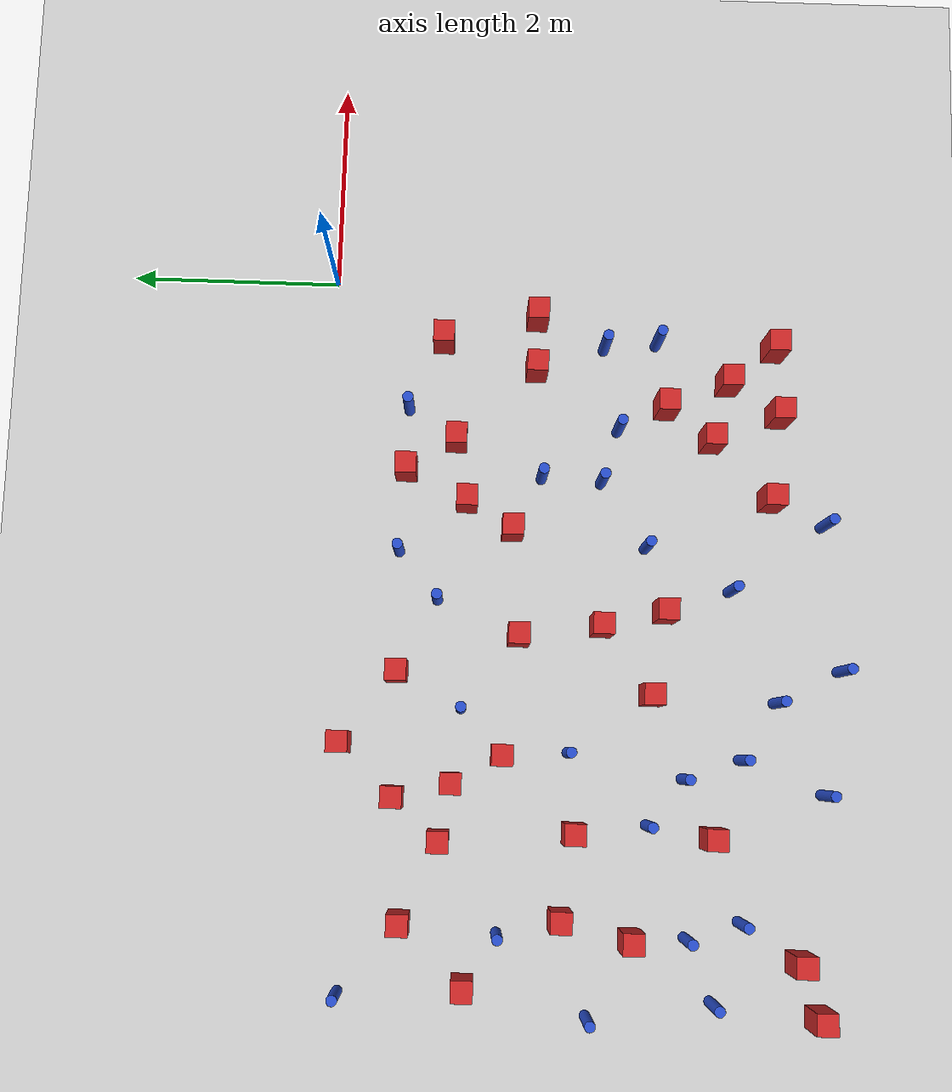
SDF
<sdf version="1.6">
 <world name="default">
  <model name="ground_plane">
   <static>1</static>
   <link name="link">
    <collision name="collision">
     <geometry><plane><normal>0 0 1</normal><size>100 100</size></plane></geometry>
     <surface><friction><ode><mu>100</mu><mu2>50</mu2></ode></friction></surface>
    </collision>
    <visual name="visual">
     <cast_shadows>0</cast_shadows>
     <geometry><plane><normal>0 0 1</normal><size>100 100</size></plane></geometry>
     <material>
      <ambient>1.0 1.0 1.0 1.0</ambient>
      <diffuse>0.8 0.8 0.8 1.0</diffuse>
      <specular>0.01 0.01 0.01 1.000000</specular>
     </material>
    </visual>
   </link>
  </model>
  <model name="square_post_obstacle5">
   <static>true</static>
   <pose>-2.03807652556 -4.21713258251 1.91545236811e-07 -7.35059704564e-06 1.12565212e-07 2.39332434364e-05</pose>
   <link name="link">
    <pose>0 0 0.25 0 -0 0</pose>
    <inertial>
     <mass>100</mass>
     <inertia>
      <ixx>0.166667</ixx>
      <ixy>0</ixy>
      <ixz>0</ixz>
      <iyy>0.166667</iyy>
      <iyz>0</iyz>
      <izz>0.166667</izz>
     </inertia>
    </inertial>
    <collision name="collision"><geometry><box><size>.2 .2 .5</size></box></geometry></collision>
    <visual name="visual">
     <geometry><box><size>.2 .2 .5</size></box></geometry>
     <material>
      <script><name>Gazebo/Red</name><uri>file://media/materials/scripts/gazebo.material</uri></script>
     </material>
    </visual>
   </link>
  </model>
  <model name="square_post_obstacle9">
   <static>true</static>
   <pose>-1.20917109149 -4.29312356543 1.91545236811e-07 -7.35059704564e-06 1.12565212e-07 2.39332434364e-05</pose>
   <link name="link">
    <pose>0 0 0.25 0 -0 0</pose>
    <inertial>
     <mass>100</mass>
     <inertia>
      <ixx>0.166667</ixx>
      <ixy>0</ixy>
      <ixz>0</ixz>
      <iyy>0.166667</iyy>
      <iyz>0</iyz>
      <izz>0.166667</izz>
     </inertia>
    </inertial>
    <collision name="collision"><geometry><box><size>.2 .2 .5</size></box></geometry></collision>
    <visual name="visual">
     <geometry><box><size>.2 .2 .5</size></box></geometry>
     <material>
      <script><name>Gazebo/Red</name><uri>file://media/materials/scripts/gazebo.material</uri></script>
     </material>
    </visual>
   </link>
  </model>
  <model name="pole_obstacle9">
   <static>true</static>
   <pose>-6.6953918444 -0.285240140767 7.38925637345e-09 -8.47170692801e-08 1.24976765176e-08 -1.74513093013e-07</pose>
   <link name="link">
    <pose>0 0 0.3 0 -0 0</pose>
    <inertial>
     <mass>1</mass>
     <inertia><ixx>0.145833</ixx><ixy>0</ixy><ixz>0</ixz><iyy>0.145833</iyy><iyz>0</iyz><izz>0.125</izz></inertia>
    </inertial>
    <collision name="collision">
     <geometry><cylinder><radius>0.05</radius><length>.6</length></cylinder></geometry>
    </collision>
    <visual name="visual">
     <geometry><cylinder><radius>0.05</radius><length>.6</length></cylinder></geometry>
     <material>
      <script><name>Gazebo/Blue</name><uri>file://media/materials/scripts/gazebo.material</uri></script>
     </material>
    </visual>
   </link>
  </model>
  <model name="pole_obstacle10">
   <static>true</static>
   <pose>-2.53055968332 -3.03960977382 7.38925637345e-09 -8.47170692798e-08 1.24976764939e-08 -1.74513093025e-07</pose>
   <link name="link">
    <pose>0 0 0.3 0 -0 0</pose>
    <inertial>
     <mass>1</mass>
     <inertia><ixx>0.145833</ixx><ixy>0</ixy><ixz>0</ixz><iyy>0.145833</iyy><iyz>0</iyz><izz>0.125</izz></inertia>
    </inertial>
    <collision name="collision">
     <geometry><cylinder><radius>0.05</radius><length>.6</length></cylinder></geometry>
    </collision>
    <visual name="visual">
     <geometry><cylinder><radius>0.05</radius><length>.6</length></cylinder></geometry>
     <material>
      <script><name>Gazebo/Blue</name><uri>file://media/materials/scripts/gazebo.material</uri></script>
     </material>
    </visual>
   </link>
  </model>
  <model name="pole_obstacle13">
   <static>true</static>
   <pose>-1.39544244567 -2.75928304356 7.38925637345e-09 -8.47170692799e-08 1.24976765053e-08 -1.74513093017e-07</pose>
   <link name="link">
    <pose>0 0 0.3 0 -0 0</pose>
    <inertial>
     <mass>1</mass>
     <inertia><ixx>0.145833</ixx><ixy>0</ixy><ixz>0</ixz><iyy>0.145833</iyy><iyz>0</iyz><izz>0.125</izz></inertia>
    </inertial>
    <collision name="collision">
     <geometry><cylinder><radius>0.05</radius><length>.6</length></cylinder></geometry>
    </collision>
    <visual name="visual">
     <geometry><cylinder><radius>0.05</radius><length>.6</length></cylinder></geometry>
     <material>
      <script><name>Gazebo/Blue</name><uri>file://media/materials/scripts/gazebo.material</uri></script>
     </material>
    </visual>
   </link>
  </model>
  <model name="pole_obstacle15">
   <static>true</static>
   <pose>-2.63163203845 -0.702044181313 7.38925637345e-09 -8.471706928e-08 1.24976765177e-08 -1.74513093012e-07</pose>
   <link name="link">
    <pose>0 0 0.3 0 -0 0</pose>
    <inertial>
     <mass>1</mass>
     <inertia><ixx>0.145833</ixx><ixy>0</ixy><ixz>0</ixz><iyy>0.145833</iyy><iyz>0</iyz><izz>0.125</izz></inertia>
    </inertial>
    <collision name="collision">
     <geometry><cylinder><radius>0.05</radius><length>.6</length></cylinder></geometry>
    </collision>
    <visual name="visual">
     <geometry><cylinder><radius>0.05</radius><length>.6</length></cylinder></geometry>
     <material>
      <script><name>Gazebo/Blue</name><uri>file://media/materials/scripts/gazebo.material</uri></script>
     </material>
    </visual>
   </link>
  </model>
  <model name="square_post_obstacle24">
   <static>true</static>
   <pose>-6.77727518409 -4.65729277757 1.91545236811e-07 -7.35059704564e-06 1.12565212e-07 2.39332434364e-05</pose>
   <link name="link">
    <pose>0 0 0.25 0 -0 0</pose>
    <inertial>
     <mass>100</mass>
     <inertia>
      <ixx>0.166667</ixx>
      <ixy>0</ixy>
      <ixz>0</ixz>
      <iyy>0.166667</iyy>
      <iyz>0</iyz>
      <izz>0.166667</izz>
     </inertia>
    </inertial>
    <collision name="collision"><geometry><box><size>.2 .2 .5</size></box></geometry></collision>
    <visual name="visual">
     <geometry><box><size>.2 .2 .5</size></box></geometry>
     <material>
      <script><name>Gazebo/Red</name><uri>file://media/materials/scripts/gazebo.material</uri></script>
     </material>
    </visual>
   </link>
  </model>
  <model name="square_post_obstacle29">
   <static>true</static>
   <pose>-0.906012896503 -3.80635101784 1.91545236811e-07 -7.35059704564e-06 1.12565212e-07 2.39332434364e-05</pose>
   <link name="link">
    <pose>0 0 0.25 0 -0 0</pose>
    <inertial>
     <mass>100</mass>
     <inertia>
      <ixx>0.166667</ixx>
      <ixy>0</ixy>
      <ixz>0</ixz>
      <iyy>0.166667</iyy>
      <iyz>0</iyz>
      <izz>0.166667</izz>
     </inertia>
    </inertial>
    <collision name="collision"><geometry><box><size>.2 .2 .5</size></box></geometry></collision>
    <visual name="visual">
     <geometry><box><size>.2 .2 .5</size></box></geometry>
     <material>
      <script><name>Gazebo/Red</name><uri>file://media/materials/scripts/gazebo.material</uri></script>
     </material>
    </visual>
   </link>
  </model>
  <model name="square_post_obstacle30">
   <static>true</static>
   <pose>-3.92213376251 -3.10645271706 1.91545236811e-07 -7.35059704564e-06 1.12565212e-07 2.39332434364e-05</pose>
   <link name="link">
    <pose>0 0 0.25 0 -0 0</pose>
    <inertial>
     <mass>100</mass>
     <inertia>
      <ixx>0.166667</ixx>
      <ixy>0</ixy>
      <ixz>0</ixz>
      <iyy>0.166667</iyy>
      <iyz>0</iyz>
      <izz>0.166667</izz>
     </inertia>
    </inertial>
    <collision name="collision"><geometry><box><size>.2 .2 .5</size></box></geometry></collision>
    <visual name="visual">
     <geometry><box><size>.2 .2 .5</size></box></geometry>
     <material>
      <script><name>Gazebo/Red</name><uri>file://media/materials/scripts/gazebo.material</uri></script>
     </material>
    </visual>
   </link>
  </model>
  <model name="pole_obstacle23">
   <static>true</static>
   <pose>-0.526305245298 -3.11880144186 7.38925637345e-09 -8.47170692799e-08 1.24976765084e-08 -1.74513093016e-07</pose>
   <link name="link">
    <pose>0 0 0.3 0 -0 0</pose>
    <inertial>
     <mass>1</mass>
     <inertia><ixx>0.145833</ixx><ixy>0</ixy><ixz>0</ixz><iyy>0.145833</iyy><iyz>0</iyz><izz>0.125</izz></inertia>
    </inertial>
    <collision name="collision">
     <geometry><cylinder><radius>0.05</radius><length>.6</length></cylinder></geometry>
    </collision>
    <visual name="visual">
     <geometry><cylinder><radius>0.05</radius><length>.6</length></cylinder></geometry>
     <material>
      <script><name>Gazebo/Blue</name><uri>file://media/materials/scripts/gazebo.material</uri></script>
     </material>
    </visual>
   </link>
  </model>
  <model name="pole_obstacle30">
   <static>true</static>
   <pose>-1.88351361245 -2.03713144798 7.38925637345e-09 -8.47170692798e-08 1.24976764909e-08 -1.74513093024e-07</pose>
   <link name="link">
    <pose>0 0 0.3 0 -0 0</pose>
    <inertial>
     <mass>1</mass>
     <inertia><ixx>0.145833</ixx><ixy>0</ixy><ixz>0</ixz><iyy>0.145833</iyy><iyz>0</iyz><izz>0.125</izz></inertia>
    </inertial>
    <collision name="collision">
     <geometry><cylinder><radius>0.05</radius><length>.6</length></cylinder></geometry>
    </collision>
    <visual name="visual">
     <geometry><cylinder><radius>0.05</radius><length>.6</length></cylinder></geometry>
     <material>
      <script><name>Gazebo/Blue</name><uri>file://media/materials/scripts/gazebo.material</uri></script>
     </material>
    </visual>
   </link>
  </model>
  <model name="pole_obstacle33">
   <static>true</static>
   <pose>-1.91092169794 -2.60706975688 7.38925637345e-09 -8.47170692799e-08 1.24976765053e-08 -1.74513093017e-07</pose>
   <link name="link">
    <pose>0 0 0.3 0 -0 0</pose>
    <inertial>
     <mass>1</mass>
     <inertia><ixx>0.145833</ixx><ixy>0</ixy><ixz>0</ixz><iyy>0.145833</iyy><iyz>0</iyz><izz>0.125</izz></inertia>
    </inertial>
    <collision name="collision">
     <geometry><cylinder><radius>0.05</radius><length>.6</length></cylinder></geometry>
    </collision>
    <visual name="visual">
     <geometry><cylinder><radius>0.05</radius><length>.6</length></cylinder></geometry>
     <material>
      <script><name>Gazebo/Blue</name><uri>file://media/materials/scripts/gazebo.material</uri></script>
     </material>
    </visual>
   </link>
  </model>
  <model name="square_post_obstacle35">
   <static>true</static>
   <pose>-5.31366560418 -1.16220148814 1.91545236811e-07 -7.35059704564e-06 1.12565212e-07 2.39332434364e-05</pose>
   <link name="link">
    <pose>0 0 0.25 0 -0 0</pose>
    <inertial>
     <mass>100</mass>
     <inertia>
      <ixx>0.166667</ixx>
      <ixy>0</ixy>
      <ixz>0</ixz>
      <iyy>0.166667</iyy>
      <iyz>0</iyz>
      <izz>0.166667</izz>
     </inertia>
    </inertial>
    <collision name="collision"><geometry><box><size>.2 .2 .5</size></box></geometry></collision>
    <visual name="visual">
     <geometry><box><size>.2 .2 .5</size></box></geometry>
     <material>
      <script><name>Gazebo/Red</name><uri>file://media/materials/scripts/gazebo.material</uri></script>
     </material>
    </visual>
   </link>
  </model>
  <model name="square_post_obstacle48">
   <static>true</static>
   <pose>-6.05205190023 -0.826511595225 1.91545236811e-07 -7.35059704564e-06 1.12565212e-07 2.39332434364e-05</pose>
   <link name="link">
    <pose>0 0 0.25 0 -0 0</pose>
    <inertial>
     <mass>100</mass>
     <inertia>
      <ixx>0.166667</ixx>
      <ixy>0</ixy>
      <ixz>0</ixz>
      <iyy>0.166667</iyy>
      <iyz>0</iyz>
      <izz>0.166667</izz>
     </inertia>
    </inertial>
    <collision name="collision"><geometry><box><size>.2 .2 .5</size></box></geometry></collision>
    <visual name="visual">
     <geometry><box><size>.2 .2 .5</size></box></geometry>
     <material>
      <script><name>Gazebo/Red</name><uri>file://media/materials/scripts/gazebo.material</uri></script>
     </material>
    </visual>
   </link>
  </model>
  <model name="pole_obstacle46">
   <static>true</static>
   <pose>-5.96248984516 -3.94384964734 7.38925637345e-09 -8.47170692798e-08 1.24976764937e-08 -1.74513093023e-07</pose>
   <link name="link">
    <pose>0 0 0.3 0 -0 0</pose>
    <inertial>
     <mass>1</mass>
     <inertia><ixx>0.145833</ixx><ixy>0</ixy><ixz>0</ixz><iyy>0.145833</iyy><iyz>0</iyz><izz>0.125</izz></inertia>
    </inertial>
    <collision name="collision">
     <geometry><cylinder><radius>0.05</radius><length>.6</length></cylinder></geometry>
    </collision>
    <visual name="visual">
     <geometry><cylinder><radius>0.05</radius><length>.6</length></cylinder></geometry>
     <material>
      <script><name>Gazebo/Blue</name><uri>file://media/materials/scripts/gazebo.material</uri></script>
     </material>
    </visual>
   </link>
  </model>
  <model name="square_post_obstacle51">
   <static>true</static>
   <pose>-0.311345802932 -1.95662684984 1.91545236811e-07 -7.35059704564e-06 1.12565212e-07 2.39332434364e-05</pose>
   <link name="link">
    <pose>0 0 0.25 0 -0 0</pose>
    <inertial>
     <mass>100</mass>
     <inertia>
      <ixx>0.166667</ixx>
      <ixy>0</ixy>
      <ixz>0</ixz>
      <iyy>0.166667</iyy>
      <iyz>0</iyz>
      <izz>0.166667</izz>
     </inertia>
    </inertial>
    <collision name="collision"><geometry><box><size>.2 .2 .5</size></box></geometry></collision>
    <visual name="visual">
     <geometry><box><size>.2 .2 .5</size></box></geometry>
     <material>
      <script><name>Gazebo/Red</name><uri>file://media/materials/scripts/gazebo.material</uri></script>
     </material>
    </visual>
   </link>
  </model>
  <model name="pole_obstacle53">
   <static>true</static>
   <pose>-3.08241645352 -1.08093072105 7.38925637345e-09 -8.471706928e-08 1.24976765152e-08 -1.74513093012e-07</pose>
   <link name="link">
    <pose>0 0 0.3 0 -0 0</pose>
    <inertial>
     <mass>1</mass>
     <inertia><ixx>0.145833</ixx><ixy>0</ixy><ixz>0</ixz><iyy>0.145833</iyy><iyz>0</iyz><izz>0.125</izz></inertia>
    </inertial>
    <collision name="collision">
     <geometry><cylinder><radius>0.05</radius><length>.6</length></cylinder></geometry>
    </collision>
    <visual name="visual">
     <geometry><cylinder><radius>0.05</radius><length>.6</length></cylinder></geometry>
     <material>
      <script><name>Gazebo/Blue</name><uri>file://media/materials/scripts/gazebo.material</uri></script>
     </material>
    </visual>
   </link>
  </model>
  <model name="pole_obstacle54">
   <static>true</static>
   <pose>-5.1178287112 -3.08607968428 7.38925637345e-09 -8.47170692798e-08 1.24976764937e-08 -1.74513093023e-07</pose>
   <link name="link">
    <pose>0 0 0.3 0 -0 0</pose>
    <inertial>
     <mass>1</mass>
     <inertia><ixx>0.145833</ixx><ixy>0</ixy><ixz>0</ixz><iyy>0.145833</iyy><iyz>0</iyz><izz>0.125</izz></inertia>
    </inertial>
    <collision name="collision">
     <geometry><cylinder><radius>0.05</radius><length>.6</length></cylinder></geometry>
    </collision>
    <visual name="visual">
     <geometry><cylinder><radius>0.05</radius><length>.6</length></cylinder></geometry>
     <material>
      <script><name>Gazebo/Blue</name><uri>file://media/materials/scripts/gazebo.material</uri></script>
     </material>
    </visual>
   </link>
  </model>
  <model name="pole_obstacle56">
   <static>true</static>
   <pose>-3.95584373122 -4.27513331034 7.38925637345e-09 -8.47170692799e-08 1.24976764985e-08 -1.74513093022e-07</pose>
   <link name="link">
    <pose>0 0 0.3 0 -0 0</pose>
    <inertial>
     <mass>1</mass>
     <inertia><ixx>0.145833</ixx><ixy>0</ixy><ixz>0</ixz><iyy>0.145833</iyy><iyz>0</iyz><izz>0.125</izz></inertia>
    </inertial>
    <collision name="collision">
     <geometry><cylinder><radius>0.05</radius><length>.6</length></cylinder></geometry>
    </collision>
    <visual name="visual">
     <geometry><cylinder><radius>0.05</radius><length>.6</length></cylinder></geometry>
     <material>
      <script><name>Gazebo/Blue</name><uri>file://media/materials/scripts/gazebo.material</uri></script>
     </material>
    </visual>
   </link>
  </model>
  <model name="pole_obstacle61">
   <static>true</static>
   <pose>-2.92018852407 -3.84283840237 7.38925637345e-09 -8.47170692798e-08 1.24976764939e-08 -1.74513093025e-07</pose>
   <link name="link">
    <pose>0 0 0.3 0 -0 0</pose>
    <inertial>
     <mass>1</mass>
     <inertia><ixx>0.145833</ixx><ixy>0</ixy><ixz>0</ixz><iyy>0.145833</iyy><iyz>0</iyz><izz>0.125</izz></inertia>
    </inertial>
    <collision name="collision">
     <geometry><cylinder><radius>0.05</radius><length>.6</length></cylinder></geometry>
    </collision>
    <visual name="visual">
     <geometry><cylinder><radius>0.05</radius><length>.6</length></cylinder></geometry>
     <material>
      <script><name>Gazebo/Blue</name><uri>file://media/materials/scripts/gazebo.material</uri></script>
     </material>
    </visual>
   </link>
  </model>
  <model name="square_post_obstacle66">
   <static>true</static>
   <pose>-0.553598267103 -4.25015423428 1.91545236811e-07 -7.35059704564e-06 1.12565212e-07 2.39332434364e-05</pose>
   <link name="link">
    <pose>0 0 0.25 0 -0 0</pose>
    <inertial>
     <mass>100</mass>
     <inertia>
      <ixx>0.166667</ixx>
      <ixy>0</ixy>
      <ixz>0</ixz>
      <iyy>0.166667</iyy>
      <iyz>0</iyz>
      <izz>0.166667</izz>
     </inertia>
    </inertial>
    <collision name="collision"><geometry><box><size>.2 .2 .5</size></box></geometry></collision>
    <visual name="visual">
     <geometry><box><size>.2 .2 .5</size></box></geometry>
     <material>
      <script><name>Gazebo/Red</name><uri>file://media/materials/scripts/gazebo.material</uri></script>
     </material>
    </visual>
   </link>
  </model>
  <model name="square_post_obstacle68">
   <static>true</static>
   <pose>-2.39517838451 -1.76963758535 1.91545236811e-07 -7.35059704564e-06 1.12565212e-07 2.39332434364e-05</pose>
   <link name="link">
    <pose>0 0 0.25 0 -0 0</pose>
    <inertial>
     <mass>100</mass>
     <inertia>
      <ixx>0.166667</ixx>
      <ixy>0</ixy>
      <ixz>0</ixz>
      <iyy>0.166667</iyy>
      <iyz>0</iyz>
      <izz>0.166667</izz>
     </inertia>
    </inertial>
    <collision name="collision"><geometry><box><size>.2 .2 .5</size></box></geometry></collision>
    <visual name="visual">
     <geometry><box><size>.2 .2 .5</size></box></geometry>
     <material>
      <script><name>Gazebo/Red</name><uri>file://media/materials/scripts/gazebo.material</uri></script>
     </material>
    </visual>
   </link>
  </model>
  <model name="pole_obstacle77">
   <static>true</static>
   <pose>-4.47627369494 -2.34353807057 7.38925637345e-09 -8.47170692798e-08 1.24976764937e-08 -1.74513093023e-07</pose>
   <link name="link">
    <pose>0 0 0.3 0 -0 0</pose>
    <inertial>
     <mass>1</mass>
     <inertia><ixx>0.145833</ixx><ixy>0</ixy><ixz>0</ixz><iyy>0.145833</iyy><iyz>0</iyz><izz>0.125</izz></inertia>
    </inertial>
    <collision name="collision">
     <geometry><cylinder><radius>0.05</radius><length>.6</length></cylinder></geometry>
    </collision>
    <visual name="visual">
     <geometry><cylinder><radius>0.05</radius><length>.6</length></cylinder></geometry>
     <material>
      <script><name>Gazebo/Blue</name><uri>file://media/materials/scripts/gazebo.material</uri></script>
     </material>
    </visual>
   </link>
  </model>
  <model name="pole_obstacle92">
   <static>true</static>
   <pose>-6.12001425335 -3.44861677639 7.38925637345e-09 -8.47170692798e-08 1.24976764937e-08 -1.74513093023e-07</pose>
   <link name="link">
    <pose>0 0 0.3 0 -0 0</pose>
    <inertial>
     <mass>1</mass>
     <inertia><ixx>0.145833</ixx><ixy>0</ixy><ixz>0</ixz><iyy>0.145833</iyy><iyz>0</iyz><izz>0.125</izz></inertia>
    </inertial>
    <collision name="collision">
     <geometry><cylinder><radius>0.05</radius><length>.6</length></cylinder></geometry>
    </collision>
    <visual name="visual">
     <geometry><cylinder><radius>0.05</radius><length>.6</length></cylinder></geometry>
     <material>
      <script><name>Gazebo/Blue</name><uri>file://media/materials/scripts/gazebo.material</uri></script>
     </material>
    </visual>
   </link>
  </model>
  <model name="square_post_obstacle86">
   <static>true</static>
   <pose>-3.40407442269 -1.85272215238 1.91545236811e-07 -7.35059704564e-06 1.12565212e-07 2.39332434364e-05</pose>
   <link name="link">
    <pose>0 0 0.25 0 -0 0</pose>
    <inertial>
     <mass>100</mass>
     <inertia>
      <ixx>0.166667</ixx>
      <ixy>0</ixy>
      <ixz>0</ixz>
      <iyy>0.166667</iyy>
      <iyz>0</iyz>
      <izz>0.166667</izz>
     </inertia>
    </inertial>
    <collision name="collision"><geometry><box><size>.2 .2 .5</size></box></geometry></collision>
    <visual name="visual">
     <geometry><box><size>.2 .2 .5</size></box></geometry>
     <material>
      <script><name>Gazebo/Red</name><uri>file://media/materials/scripts/gazebo.material</uri></script>
     </material>
    </visual>
   </link>
  </model>
  <model name="pole_obstacle107">
   <static>true</static>
   <pose>-4.49331736356 -3.95053032347 7.38925637345e-09 -8.47170692799e-08 1.24976764984e-08 -1.7451309302e-07</pose>
   <link name="link">
    <pose>0 0 0.3 0 -0 0</pose>
    <inertial>
     <mass>1</mass>
     <inertia><ixx>0.145833</ixx><ixy>0</ixy><ixz>0</ixz><iyy>0.145833</iyy><iyz>0</iyz><izz>0.125</izz></inertia>
    </inertial>
    <collision name="collision">
     <geometry><cylinder><radius>0.05</radius><length>.6</length></cylinder></geometry>
    </collision>
    <visual name="visual">
     <geometry><cylinder><radius>0.05</radius><length>.6</length></cylinder></geometry>
     <material>
      <script><name>Gazebo/Blue</name><uri>file://media/materials/scripts/gazebo.material</uri></script>
     </material>
    </visual>
   </link>
  </model>
  <model name="square_post_obstacle101">
   <static>true</static>
   <pose>-1.84406301253 -0.744401949673 1.91545236811e-07 -7.35059704564e-06 1.12565212e-07 2.39332434364e-05</pose>
   <link name="link">
    <pose>0 0 0.25 0 -0 0</pose>
    <inertial>
     <mass>100</mass>
     <inertia>
      <ixx>0.166667</ixx>
      <ixy>0</ixy>
      <ixz>0</ixz>
      <iyy>0.166667</iyy>
      <iyz>0</iyz>
      <izz>0.166667</izz>
     </inertia>
    </inertial>
    <collision name="collision"><geometry><box><size>.2 .2 .5</size></box></geometry></collision>
    <visual name="visual">
     <geometry><box><size>.2 .2 .5</size></box></geometry>
     <material>
      <script><name>Gazebo/Red</name><uri>file://media/materials/scripts/gazebo.material</uri></script>
     </material>
    </visual>
   </link>
  </model>
  <model name="square_post_obstacle107">
   <static>true</static>
   <pose>-4.52147105227 -1.72598595655 1.91545236811e-07 -7.35059704564e-06 1.12565212e-07 2.39332434364e-05</pose>
   <link name="link">
    <pose>0 0 0.25 0 -0 0</pose>
    <inertial>
     <mass>100</mass>
     <inertia>
      <ixx>0.166667</ixx>
      <ixy>0</ixy>
      <ixz>0</ixz>
      <iyy>0.166667</iyy>
      <iyz>0</iyz>
      <izz>0.166667</izz>
     </inertia>
    </inertial>
    <collision name="collision"><geometry><box><size>.2 .2 .5</size></box></geometry></collision>
    <visual name="visual">
     <geometry><box><size>.2 .2 .5</size></box></geometry>
     <material>
      <script><name>Gazebo/Red</name><uri>file://media/materials/scripts/gazebo.material</uri></script>
     </material>
    </visual>
   </link>
  </model>
  <model name="square_post_obstacle111">
   <static>true</static>
   <pose>-4.4440061418 -0.215676801035 1.91545236811e-07 -7.35059704564e-06 1.12565212e-07 2.39332434364e-05</pose>
   <link name="link">
    <pose>0 0 0.25 0 -0 0</pose>
    <inertial>
     <mass>100</mass>
     <inertia>
      <ixx>0.166667</ixx>
      <ixy>0</ixy>
      <ixz>0</ixz>
      <iyy>0.166667</iyy>
      <iyz>0</iyz>
      <izz>0.166667</izz>
     </inertia>
    </inertial>
    <collision name="collision"><geometry><box><size>.2 .2 .5</size></box></geometry></collision>
    <visual name="visual">
     <geometry><box><size>.2 .2 .5</size></box></geometry>
     <material>
      <script><name>Gazebo/Red</name><uri>file://media/materials/scripts/gazebo.material</uri></script>
     </material>
    </visual>
   </link>
  </model>
  <model name="square_post_obstacle114">
   <static>true</static>
   <pose>-6.29801564983 -4.48213654313 1.91545236811e-07 -7.35059704564e-06 1.12565212e-07 2.39332434364e-05</pose>
   <link name="link">
    <pose>0 0 0.25 0 -0 0</pose>
    <inertial>
     <mass>100</mass>
     <inertia>
      <ixx>0.166667</ixx>
      <ixy>0</ixy>
      <ixz>0</ixz>
      <iyy>0.166667</iyy>
      <iyz>0</iyz>
      <izz>0.166667</izz>
     </inertia>
    </inertial>
    <collision name="collision"><geometry><box><size>.2 .2 .5</size></box></geometry></collision>
    <visual name="visual">
     <geometry><box><size>.2 .2 .5</size></box></geometry>
     <material>
      <script><name>Gazebo/Red</name><uri>file://media/materials/scripts/gazebo.material</uri></script>
     </material>
    </visual>
   </link>
  </model>
  <model name="pole_obstacle130">
   <static>true</static>
   <pose>-2.27053547179 -4.72343005954 7.38925637345e-09 -8.47170692798e-08 1.24976765033e-08 -1.74513093019e-07</pose>
   <link name="link">
    <pose>0 0 0.3 0 -0 0</pose>
    <inertial>
     <mass>1</mass>
     <inertia><ixx>0.145833</ixx><ixy>0</ixy><ixz>0</ixz><iyy>0.145833</iyy><iyz>0</iyz><izz>0.125</izz></inertia>
    </inertial>
    <collision name="collision">
     <geometry><cylinder><radius>0.05</radius><length>.6</length></cylinder></geometry>
    </collision>
    <visual name="visual">
     <geometry><cylinder><radius>0.05</radius><length>.6</length></cylinder></geometry>
     <material>
      <script><name>Gazebo/Blue</name><uri>file://media/materials/scripts/gazebo.material</uri></script>
     </material>
    </visual>
   </link>
  </model>
  <model name="pole_obstacle131">
   <static>true</static>
   <pose>-4.79116954356 -4.71918309919 7.38925637345e-09 -8.47170692796e-08 1.24976764786e-08 -1.74513093032e-07</pose>
   <link name="link">
    <pose>0 0 0.3 0 -0 0</pose>
    <inertial>
     <mass>1</mass>
     <inertia><ixx>0.145833</ixx><ixy>0</ixy><ixz>0</ixz><iyy>0.145833</iyy><iyz>0</iyz><izz>0.125</izz></inertia>
    </inertial>
    <collision name="collision">
     <geometry><cylinder><radius>0.05</radius><length>.6</length></cylinder></geometry>
    </collision>
    <visual name="visual">
     <geometry><cylinder><radius>0.05</radius><length>.6</length></cylinder></geometry>
     <material>
      <script><name>Gazebo/Blue</name><uri>file://media/materials/scripts/gazebo.material</uri></script>
     </material>
    </visual>
   </link>
  </model>
  <model name="pole_obstacle136">
   <static>true</static>
   <pose>-4.68492686567 -3.41568006937 7.38925637345e-09 -8.47170692798e-08 1.24976764937e-08 -1.74513093023e-07</pose>
   <link name="link">
    <pose>0 0 0.3 0 -0 0</pose>
    <inertial>
     <mass>1</mass>
     <inertia><ixx>0.145833</ixx><ixy>0</ixy><ixz>0</ixz><iyy>0.145833</iyy><iyz>0</iyz><izz>0.125</izz></inertia>
    </inertial>
    <collision name="collision">
     <geometry><cylinder><radius>0.05</radius><length>.6</length></cylinder></geometry>
    </collision>
    <visual name="visual">
     <geometry><cylinder><radius>0.05</radius><length>.6</length></cylinder></geometry>
     <material>
      <script><name>Gazebo/Blue</name><uri>file://media/materials/scripts/gazebo.material</uri></script>
     </material>
    </visual>
   </link>
  </model>
  <model name="pole_obstacle138">
   <static>true</static>
   <pose>-4.09955067433 -1.33531950114 7.38925637345e-09 -8.471706928e-08 1.24976765134e-08 -1.74513093015e-07</pose>
   <link name="link">
    <pose>0 0 0.3 0 -0 0</pose>
    <inertial>
     <mass>1</mass>
     <inertia><ixx>0.145833</ixx><ixy>0</ixy><ixz>0</ixz><iyy>0.145833</iyy><iyz>0</iyz><izz>0.125</izz></inertia>
    </inertial>
    <collision name="collision">
     <geometry><cylinder><radius>0.05</radius><length>.6</length></cylinder></geometry>
    </collision>
    <visual name="visual">
     <geometry><cylinder><radius>0.05</radius><length>.6</length></cylinder></geometry>
     <material>
      <script><name>Gazebo/Blue</name><uri>file://media/materials/scripts/gazebo.material</uri></script>
     </material>
    </visual>
   </link>
  </model>
  <model name="square_post_obstacle120">
   <static>true</static>
   <pose>-6.14857527038 -2.94163625986 1.91545236811e-07 -7.35059704564e-06 1.12565212e-07 2.39332434364e-05</pose>
   <link name="link">
    <pose>0 0 0.25 0 -0 0</pose>
    <inertial>
     <mass>100</mass>
     <inertia>
      <ixx>0.166667</ixx>
      <ixy>0</ixy>
      <ixz>0</ixz>
      <iyy>0.166667</iyy>
      <iyz>0</iyz>
      <izz>0.166667</izz>
     </inertia>
    </inertial>
    <collision name="collision"><geometry><box><size>.2 .2 .5</size></box></geometry></collision>
    <visual name="visual">
     <geometry><box><size>.2 .2 .5</size></box></geometry>
     <material>
      <script><name>Gazebo/Red</name><uri>file://media/materials/scripts/gazebo.material</uri></script>
     </material>
    </visual>
   </link>
  </model>
  <model name="square_post_obstacle141">
   <static>true</static>
   <pose>-1.160143467 -3.21169674453 1.91545236811e-07 -7.35059704564e-06 1.12565212e-07 2.39332434364e-05</pose>
   <link name="link">
    <pose>0 0 0.25 0 -0 0</pose>
    <inertial>
     <mass>100</mass>
     <inertia>
      <ixx>0.166667</ixx>
      <ixy>0</ixy>
      <ixz>0</ixz>
      <iyy>0.166667</iyy>
      <iyz>0</iyz>
      <izz>0.166667</izz>
     </inertia>
    </inertial>
    <collision name="collision"><geometry><box><size>.2 .2 .5</size></box></geometry></collision>
    <visual name="visual">
     <geometry><box><size>.2 .2 .5</size></box></geometry>
     <material>
      <script><name>Gazebo/Red</name><uri>file://media/materials/scripts/gazebo.material</uri></script>
     </material>
    </visual>
   </link>
  </model>
  <model name="square_post_obstacle142">
   <static>true</static>
   <pose>-3.28971064408 -2.62966122819 1.91545236811e-07 -7.35059704564e-06 1.12565212e-07 2.39332434364e-05</pose>
   <link name="link">
    <pose>0 0 0.25 0 -0 0</pose>
    <inertial>
     <mass>100</mass>
     <inertia>
      <ixx>0.166667</ixx>
      <ixy>0</ixy>
      <ixz>0</ixz>
      <iyy>0.166667</iyy>
      <iyz>0</iyz>
      <izz>0.166667</izz>
     </inertia>
    </inertial>
    <collision name="collision"><geometry><box><size>.2 .2 .5</size></box></geometry></collision>
    <visual name="visual">
     <geometry><box><size>.2 .2 .5</size></box></geometry>
     <material>
      <script><name>Gazebo/Red</name><uri>file://media/materials/scripts/gazebo.material</uri></script>
     </material>
    </visual>
   </link>
  </model>
  <model name="square_post_obstacle143">
   <static>true</static>
   <pose>-4.92830145032 -0.72710511131 1.91545236811e-07 -7.35059704564e-06 1.12565212e-07 2.39332434364e-05</pose>
   <link name="link">
    <pose>0 0 0.25 0 -0 0</pose>
    <inertial>
     <mass>100</mass>
     <inertia>
      <ixx>0.166667</ixx>
      <ixy>0</ixy>
      <ixz>0</ixz>
      <iyy>0.166667</iyy>
      <iyz>0</iyz>
      <izz>0.166667</izz>
     </inertia>
    </inertial>
    <collision name="collision"><geometry><box><size>.2 .2 .5</size></box></geometry></collision>
    <visual name="visual">
     <geometry><box><size>.2 .2 .5</size></box></geometry>
     <material>
      <script><name>Gazebo/Red</name><uri>file://media/materials/scripts/gazebo.material</uri></script>
     </material>
    </visual>
   </link>
  </model>
  <model name="square_post_obstacle153">
   <static>true</static>
   <pose>-5.21432978765 -3.68557632081 1.91545236811e-07 -7.35059704564e-06 1.12565212e-07 2.39332434364e-05</pose>
   <link name="link">
    <pose>0 0 0.25 0 -0 0</pose>
    <inertial>
     <mass>100</mass>
     <inertia>
      <ixx>0.166667</ixx>
      <ixy>0</ixy>
      <ixz>0</ixz>
      <iyy>0.166667</iyy>
      <iyz>0</iyz>
      <izz>0.166667</izz>
     </inertia>
    </inertial>
    <collision name="collision"><geometry><box><size>.2 .2 .5</size></box></geometry></collision>
    <visual name="visual">
     <geometry><box><size>.2 .2 .5</size></box></geometry>
     <material>
      <script><name>Gazebo/Red</name><uri>file://media/materials/scripts/gazebo.material</uri></script>
     </material>
    </visual>
   </link>
  </model>
  <model name="pole_obstacle165">
   <static>true</static>
   <pose>-6.84113903139 -2.55378320937 7.38925637345e-09 -8.47170692798e-08 1.24976764937e-08 -1.74513093023e-07</pose>
   <link name="link">
    <pose>0 0 0.3 0 -0 0</pose>
    <inertial>
     <mass>1</mass>
     <inertia><ixx>0.145833</ixx><ixy>0</ixy><ixz>0</ixz><iyy>0.145833</iyy><iyz>0</iyz><izz>0.125</izz></inertia>
    </inertial>
    <collision name="collision">
     <geometry><cylinder><radius>0.05</radius><length>.6</length></cylinder></geometry>
    </collision>
    <visual name="visual">
     <geometry><cylinder><radius>0.05</radius><length>.6</length></cylinder></geometry>
     <material>
      <script><name>Gazebo/Blue</name><uri>file://media/materials/scripts/gazebo.material</uri></script>
     </material>
    </visual>
   </link>
  </model>
  <model name="pole_obstacle167">
   <static>true</static>
   <pose>-6.13180322656 -1.72240679697 7.38925637345e-09 -8.471706928e-08 1.24976765134e-08 -1.74513093015e-07</pose>
   <link name="link">
    <pose>0 0 0.3 0 -0 0</pose>
    <inertial>
     <mass>1</mass>
     <inertia><ixx>0.145833</ixx><ixy>0</ixy><ixz>0</ixz><iyy>0.145833</iyy><iyz>0</iyz><izz>0.125</izz></inertia>
    </inertial>
    <collision name="collision">
     <geometry><cylinder><radius>0.05</radius><length>.6</length></cylinder></geometry>
    </collision>
    <visual name="visual">
     <geometry><cylinder><radius>0.05</radius><length>.6</length></cylinder></geometry>
     <material>
      <script><name>Gazebo/Blue</name><uri>file://media/materials/scripts/gazebo.material</uri></script>
     </material>
    </visual>
   </link>
  </model>
  <model name="square_post_obstacle166">
   <static>true</static>
   <pose>-1.47868633697 -3.64939898204 1.91545236811e-07 -7.35059704564e-06 1.12565212e-07 2.39332434364e-05</pose>
   <link name="link">
    <pose>0 0 0.25 0 -0 0</pose>
    <inertial>
     <mass>100</mass>
     <inertia>
      <ixx>0.166667</ixx>
      <ixy>0</ixy>
      <ixz>0</ixz>
      <iyy>0.166667</iyy>
      <iyz>0</iyz>
      <izz>0.166667</izz>
     </inertia>
    </inertial>
    <collision name="collision"><geometry><box><size>.2 .2 .5</size></box></geometry></collision>
    <visual name="visual">
     <geometry><box><size>.2 .2 .5</size></box></geometry>
     <material>
      <script><name>Gazebo/Red</name><uri>file://media/materials/scripts/gazebo.material</uri></script>
     </material>
    </visual>
   </link>
  </model>
  <model name="square_post_obstacle171">
   <static>true</static>
   <pose>-6.60274140151 -1.42113651614 1.91545236811e-07 -7.35059704564e-06 1.12565212e-07 2.39332434364e-05</pose>
   <link name="link">
    <pose>0 0 0.25 0 -0 0</pose>
    <inertial>
     <mass>100</mass>
     <inertia>
      <ixx>0.166667</ixx>
      <ixy>0</ixy>
      <ixz>0</ixz>
      <iyy>0.166667</iyy>
      <iyz>0</iyz>
      <izz>0.166667</izz>
     </inertia>
    </inertial>
    <collision name="collision"><geometry><box><size>.2 .2 .5</size></box></geometry></collision>
    <visual name="visual">
     <geometry><box><size>.2 .2 .5</size></box></geometry>
     <material>
      <script><name>Gazebo/Red</name><uri>file://media/materials/scripts/gazebo.material</uri></script>
     </material>
    </visual>
   </link>
  </model>
  <model name="pole_obstacle183">
   <static>true</static>
   <pose>-6.67926850448 -3.68947673362 7.38925637345e-09 -8.47170692798e-08 1.24976764937e-08 -1.74513093023e-07</pose>
   <link name="link">
    <pose>0 0 0.3 0 -0 0</pose>
    <inertial>
     <mass>1</mass>
     <inertia><ixx>0.145833</ixx><ixy>0</ixy><ixz>0</ixz><iyy>0.145833</iyy><iyz>0</iyz><izz>0.125</izz></inertia>
    </inertial>
    <collision name="collision">
     <geometry><cylinder><radius>0.05</radius><length>.6</length></cylinder></geometry>
    </collision>
    <visual name="visual">
     <geometry><cylinder><radius>0.05</radius><length>.6</length></cylinder></geometry>
     <material>
      <script><name>Gazebo/Blue</name><uri>file://media/materials/scripts/gazebo.material</uri></script>
     </material>
    </visual>
   </link>
  </model>
  <model name="square_post_obstacle173">
   <static>true</static>
   <pose>-3.77613352416 -0.724971380618 1.91545236811e-07 -7.35059704564e-06 1.12565212e-07 2.39332434364e-05</pose>
   <link name="link">
    <pose>0 0 0.25 0 -0 0</pose>
    <inertial>
     <mass>100</mass>
     <inertia>
      <ixx>0.166667</ixx>
      <ixy>0</ixy>
      <ixz>0</ixz>
      <iyy>0.166667</iyy>
      <iyz>0</iyz>
      <izz>0.166667</izz>
     </inertia>
    </inertial>
    <collision name="collision"><geometry><box><size>.2 .2 .5</size></box></geometry></collision>
    <visual name="visual">
     <geometry><box><size>.2 .2 .5</size></box></geometry>
     <material>
      <script><name>Gazebo/Red</name><uri>file://media/materials/scripts/gazebo.material</uri></script>
     </material>
    </visual>
   </link>
  </model>
  <model name="square_post_obstacle175">
   <static>true</static>
   <pose>-1.54448290486 -1.21158787289 1.91545236811e-07 -7.35059704564e-06 1.12565212e-07 2.39332434364e-05</pose>
   <link name="link">
    <pose>0 0 0.25 0 -0 0</pose>
    <inertial>
     <mass>100</mass>
     <inertia>
      <ixx>0.166667</ixx>
      <ixy>0</ixy>
      <ixz>0</ixz>
      <iyy>0.166667</iyy>
      <iyz>0</iyz>
      <izz>0.166667</izz>
     </inertia>
    </inertial>
    <collision name="collision"><geometry><box><size>.2 .2 .5</size></box></geometry></collision>
    <visual name="visual">
     <geometry><box><size>.2 .2 .5</size></box></geometry>
     <material>
      <script><name>Gazebo/Red</name><uri>file://media/materials/scripts/gazebo.material</uri></script>
     </material>
    </visual>
   </link>
  </model>
  <model name="square_post_obstacle178">
   <static>true</static>
   <pose>-2.13225877047 -1.33097922534 1.91545236811e-07 -7.35059704564e-06 1.12565212e-07 2.39332434364e-05</pose>
   <link name="link">
    <pose>0 0 0.25 0 -0 0</pose>
    <inertial>
     <mass>100</mass>
     <inertia>
      <ixx>0.166667</ixx>
      <ixy>0</ixy>
      <ixz>0</ixz>
      <iyy>0.166667</iyy>
      <iyz>0</iyz>
      <izz>0.166667</izz>
     </inertia>
    </inertial>
    <collision name="collision"><geometry><box><size>.2 .2 .5</size></box></geometry></collision>
    <visual name="visual">
     <geometry><box><size>.2 .2 .5</size></box></geometry>
     <material>
      <script><name>Gazebo/Red</name><uri>file://media/materials/scripts/gazebo.material</uri></script>
     </material>
    </visual>
   </link>
  </model>
  <model name="square_post_obstacle185">
   <static>true</static>
   <pose>-5.2096451234 -2.40409372166 1.91545236811e-07 -7.35059704564e-06 1.12565212e-07 2.39332434364e-05</pose>
   <link name="link">
    <pose>0 0 0.25 0 -0 0</pose>
    <inertial>
     <mass>100</mass>
     <inertia>
      <ixx>0.166667</ixx>
      <ixy>0</ixy>
      <ixz>0</ixz>
      <iyy>0.166667</iyy>
      <iyz>0</iyz>
      <izz>0.166667</izz>
     </inertia>
    </inertial>
    <collision name="collision"><geometry><box><size>.2 .2 .5</size></box></geometry></collision>
    <visual name="visual">
     <geometry><box><size>.2 .2 .5</size></box></geometry>
     <material>
      <script><name>Gazebo/Red</name><uri>file://media/materials/scripts/gazebo.material</uri></script>
     </material>
    </visual>
   </link>
  </model>
  <model name="square_post_obstacle191">
   <static>true</static>
   <pose>-5.9843031785 -2.29260450091 1.91545236811e-07 -7.35059704564e-06 1.12565212e-07 2.39332434364e-05</pose>
   <link name="link">
    <pose>0 0 0.25 0 -0 0</pose>
    <inertial>
     <mass>100</mass>
     <inertia>
      <ixx>0.166667</ixx>
      <ixy>0</ixy>
      <ixz>0</ixz>
      <iyy>0.166667</iyy>
      <iyz>0</iyz>
      <izz>0.166667</izz>
     </inertia>
    </inertial>
    <collision name="collision"><geometry><box><size>.2 .2 .5</size></box></geometry></collision>
    <visual name="visual">
     <geometry><box><size>.2 .2 .5</size></box></geometry>
     <material>
      <script><name>Gazebo/Red</name><uri>file://media/materials/scripts/gazebo.material</uri></script>
     </material>
    </visual>
   </link>
  </model>
  <model name="square_post_obstacle198">
   <static>true</static>
   <pose>-0.822447611078 -1.95984732726 1.91545236811e-07 -7.35059704564e-06 1.12565212e-07 2.39332434364e-05</pose>
   <link name="link">
    <pose>0 0 0.25 0 -0 0</pose>
    <inertial>
     <mass>100</mass>
     <inertia>
      <ixx>0.166667</ixx>
      <ixy>0</ixy>
      <ixz>0</ixz>
      <iyy>0.166667</iyy>
      <iyz>0</iyz>
      <izz>0.166667</izz>
     </inertia>
    </inertial>
    <collision name="collision"><geometry><box><size>.2 .2 .5</size></box></geometry></collision>
    <visual name="visual">
     <geometry><box><size>.2 .2 .5</size></box></geometry>
     <material>
      <script><name>Gazebo/Red</name><uri>file://media/materials/scripts/gazebo.material</uri></script>
     </material>
    </visual>
   </link>
  </model>
  <model name="square_post_obstacle201">
   <static>true</static>
   <pose>-4.7908407536 -1.26189846638 1.91545236811e-07 -7.35059704564e-06 1.12565212e-07 2.39332434364e-05</pose>
   <link name="link">
    <pose>0 0 0.25 0 -0 0</pose>
    <inertial>
     <mass>100</mass>
     <inertia>
      <ixx>0.166667</ixx>
      <ixy>0</ixy>
      <ixz>0</ixz>
      <iyy>0.166667</iyy>
      <iyz>0</iyz>
      <izz>0.166667</izz>
     </inertia>
    </inertial>
    <collision name="collision"><geometry><box><size>.2 .2 .5</size></box></geometry></collision>
    <visual name="visual">
     <geometry><box><size>.2 .2 .5</size></box></geometry>
     <material>
      <script><name>Gazebo/Red</name><uri>file://media/materials/scripts/gazebo.material</uri></script>
     </material>
    </visual>
   </link>
  </model>
  <model name="pole_obstacle190">
   <static>true</static>
   <pose>-1.24593477916 -0.747771388285 7.38925637345e-09 -8.47170692799e-08 1.24976765075e-08 -1.74513093017e-07</pose>
   <link name="link">
    <pose>0 0 0.3 0 -0 0</pose>
    <inertial>
     <mass>1</mass>
     <inertia><ixx>0.145833</ixx><ixy>0</ixy><ixz>0</ixz><iyy>0.145833</iyy><iyz>0</iyz><izz>0.125</izz></inertia>
    </inertial>
    <collision name="collision">
     <geometry><cylinder><radius>0.05</radius><length>.6</length></cylinder></geometry>
    </collision>
    <visual name="visual">
     <geometry><cylinder><radius>0.05</radius><length>.6</length></cylinder></geometry>
     <material>
      <script><name>Gazebo/Blue</name><uri>file://media/materials/scripts/gazebo.material</uri></script>
     </material>
    </visual>
   </link>
  </model>
  <model name="square_post_obstacle214">
   <static>true</static>
   <pose>-0.563876689243 -1.0614057555 1.91545236811e-07 -7.35059704564e-06 1.12565212e-07 2.39332434364e-05</pose>
   <link name="link">
    <pose>0 0 0.25 0 -0 0</pose>
    <inertial>
     <mass>100</mass>
     <inertia>
      <ixx>0.166667</ixx>
      <ixy>0</ixy>
      <ixz>0</ixz>
      <iyy>0.166667</iyy>
      <iyz>0</iyz>
      <izz>0.166667</izz>
     </inertia>
    </inertial>
    <collision name="collision"><geometry><box><size>.2 .2 .5</size></box></geometry></collision>
    <visual name="visual">
     <geometry><box><size>.2 .2 .5</size></box></geometry>
     <material>
      <script><name>Gazebo/Red</name><uri>file://media/materials/scripts/gazebo.material</uri></script>
     </material>
    </visual>
   </link>
  </model>
  <model name="square_post_obstacle215">
   <static>true</static>
   <pose>-3.14025260863 -3.22362176005 1.91545236811e-07 -7.35059704564e-06 1.12565212e-07 2.39332434364e-05</pose>
   <link name="link">
    <pose>0 0 0.25 0 -0 0</pose>
    <inertial>
     <mass>100</mass>
     <inertia>
      <ixx>0.166667</ixx>
      <ixy>0</ixy>
      <ixz>0</ixz>
      <iyy>0.166667</iyy>
      <iyz>0</iyz>
      <izz>0.166667</izz>
     </inertia>
    </inertial>
    <collision name="collision"><geometry><box><size>.2 .2 .5</size></box></geometry></collision>
    <visual name="visual">
     <geometry><box><size>.2 .2 .5</size></box></geometry>
     <material>
      <script><name>Gazebo/Red</name><uri>file://media/materials/scripts/gazebo.material</uri></script>
     </material>
    </visual>
   </link>
  </model>
  <model name="pole_obstacle209">
   <static>true</static>
   <pose>-0.588727781725 -2.61227466692 7.38925637345e-09 -8.47170692799e-08 1.2497676509e-08 -1.74513093016e-07</pose>
   <link name="link">
    <pose>0 0 0.3 0 -0 0</pose>
    <inertial>
     <mass>1</mass>
     <inertia><ixx>0.145833</ixx><ixy>0</ixy><ixz>0</ixz><iyy>0.145833</iyy><iyz>0</iyz><izz>0.125</izz></inertia>
    </inertial>
    <collision name="collision">
     <geometry><cylinder><radius>0.05</radius><length>.6</length></cylinder></geometry>
    </collision>
    <visual name="visual">
     <geometry><cylinder><radius>0.05</radius><length>.6</length></cylinder></geometry>
     <material>
      <script><name>Gazebo/Blue</name><uri>file://media/materials/scripts/gazebo.material</uri></script>
     </material>
    </visual>
   </link>
  </model>
  <model name="pole_obstacle221">
   <static>true</static>
   <pose>-3.64302999043 -4.87861997922 7.38925637345e-09 -8.47170692794e-08 1.24976764468e-08 -1.7451309304e-07</pose>
   <link name="link">
    <pose>0 0 0.3 0 -0 0</pose>
    <inertial>
     <mass>1</mass>
     <inertia><ixx>0.145833</ixx><ixy>0</ixy><ixz>0</ixz><iyy>0.145833</iyy><iyz>0</iyz><izz>0.125</izz></inertia>
    </inertial>
    <collision name="collision">
     <geometry><cylinder><radius>0.05</radius><length>.6</length></cylinder></geometry>
    </collision>
    <visual name="visual">
     <geometry><cylinder><radius>0.05</radius><length>.6</length></cylinder></geometry>
     <material>
      <script><name>Gazebo/Blue</name><uri>file://media/materials/scripts/gazebo.material</uri></script>
     </material>
    </visual>
   </link>
  </model>
 </world>
</sdf>
